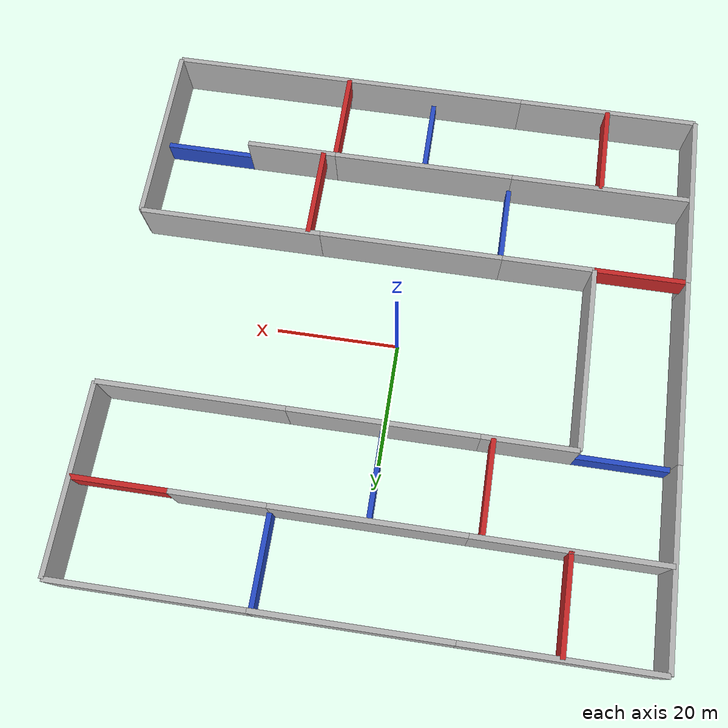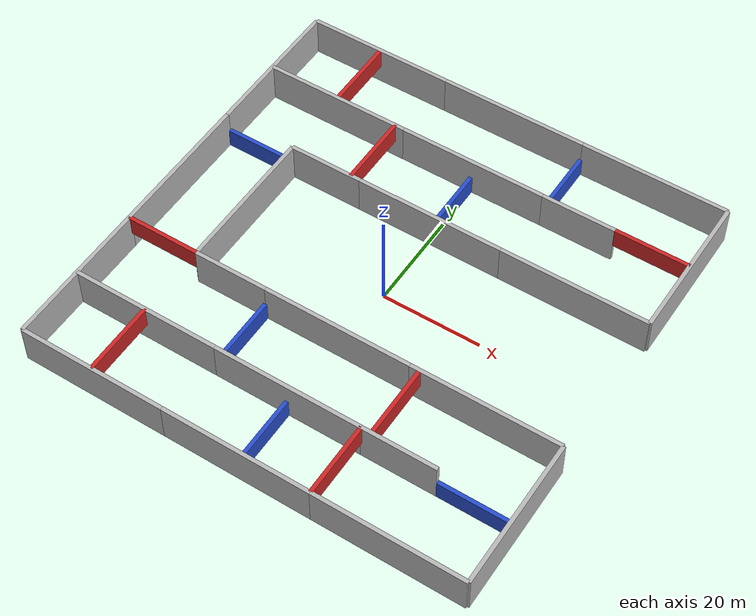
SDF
<?xml version="1.0" ?>
<sdf version="1.5">
  <world name="default">
    <scene>
      <sky>
        <clouds>
          <speed>7</speed>
        </clouds>
      </sky>
    </scene>

    <physics name='default_physics' default='0' type='ode'>
      <gravity>0 0 -9.8066</gravity>
      <ode>
        <solver>
          <type>quick</type>
          <iters>25</iters>
          <sor>1.3</sor>
          <use_dynamic_moi_rescaling>0</use_dynamic_moi_rescaling>
        </solver>
        <constraints>
          <cfm>0</cfm>
          <erp>0.2</erp>
          <contact_max_correcting_vel>100</contact_max_correcting_vel>
          <contact_surface_layer>0.001</contact_surface_layer>
        </constraints>
      </ode>
      <max_step_size>0.004</max_step_size>
      <real_time_factor>1</real_time_factor>
      <real_time_update_rate>250</real_time_update_rate>
      <magnetic_field>6.0e-6 2.3e-5 -4.2e-5</magnetic_field>
    </physics>

    <!-- A global light source -->
    <include>
      <uri>model://sun</uri>
    </include>
    <!-- A ground plane -->

    <include>
      <static>true</static>
      <pose>-0 0 0 0 0 0</pose>
      <uri>model://easy_maze_3d</uri>
    </include>

    <plugin name='gazebo_octomap' filename='libBuildOctomapPlugin.so'/>

  </world>
</sdf>

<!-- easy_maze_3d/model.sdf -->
<sdf version="1.5">
  <model name="easy_maze_3d">

    <include>
      <name>w1</name>
      <pose>-30 -45 0 0 0 0</pose>
      <uri>model://maze_wall</uri>
    </include>
    <include>
      <name>w2</name>
      <pose>0 -45 0 0 0 0</pose>
      <uri>model://maze_wall</uri>
    </include>
    <include>
      <name>w3</name>
      <pose>30 -45 0 0 0 0</pose>
      <uri>model://maze_wall</uri>
    </include>
    <include>
      <name>w4</name>
      <pose>-30 -30 0 0 0 0</pose>
      <uri>model://maze_wall</uri>
    </include>
    <include>
      <name>w5</name>
      <pose>0 -30 0 0 0 0</pose>
      <uri>model://maze_wall</uri>
    </include>
    <include>
      <name>w6</name>
      <pose>22.5 -30 0 0 0 0</pose>
      <uri>model://maze_wall_short</uri>
    </include>
    <include>
      <name>w7</name>
      <pose>45 -30 0 0 0 1.5708</pose>
      <uri>model://maze_wall</uri>
    </include>
    <include>
      <name>w8</name>
      <pose>30 -15 0 0 0 0</pose>
      <uri>model://maze_wall</uri>
    </include>
    <include>
      <name>w9</name>
      <pose>0 -15 0 0 0 0</pose>
      <uri>model://maze_wall</uri>
    </include>
    <include>
      <name>w10</name>
      <pose>-22.5 -15 0 0 0 0</pose>
      <uri>model://maze_wall_short</uri>
    </include>

    <include>
      <name>w11</name>
      <pose>-45 -30 0 0 0 1.5708</pose>
      <uri>model://maze_wall</uri>
    </include>
    <include>
      <name>w12</name>
      <pose>-45 0 0 0 0 1.5708</pose>
      <uri>model://maze_wall</uri>
    </include>
    <include>
      <name>w13</name>
      <pose>-45 30 0 0 0 1.5708</pose>
      <uri>model://maze_wall</uri>
    </include>
    <include>
      <name>w14</name>
      <pose>-30 0 0 0 0 1.5708</pose>
      <uri>model://maze_wall</uri>
    </include>
    <include>
      <name>w15</name>
      <pose>30 15 0 0 0 0</pose>
      <uri>model://maze_wall</uri>
    </include>
    <include>
      <name>w16</name>
      <pose>0 15 0 0 0 0</pose>
      <uri>model://maze_wall</uri>
    </include>
    <include>
      <name>w17</name>
      <pose>-22.5 15 0 0 0 0</pose>
      <uri>model://maze_wall_short</uri>
    </include>
    <include>
      <name>w18</name>
      <pose>-30 30 0 0 0 0</pose>
      <uri>model://maze_wall</uri>
    </include>
    <include>
      <name>w19</name>
      <pose>0 30 0 0 0 0</pose>
      <uri>model://maze_wall</uri>
    </include>
    <include>
      <name>w20</name>
      <pose>22.5 30 0 0 0 0</pose>
      <uri>model://maze_wall_short</uri>
    </include>
    <include>
      <name>w21</name>
      <pose>-30 45 0 0 0 0</pose>
      <uri>model://maze_wall</uri>
    </include>
    <include>
      <name>w22</name>
      <pose>0 45 0 0 0 0</pose>
      <uri>model://maze_wall</uri>
    </include>
    <include>
      <name>w23</name>
      <pose>30 45 0 0 0 0</pose>
      <uri>model://maze_wall</uri>
    </include>
    <include>
      <name>w24</name>
      <pose>45 30 0 0 0 1.5708</pose>
      <uri>model://maze_wall</uri>
    </include>

    <include>
      <name>w101</name>
      <pose>0 -37.5 0 0 0 1.5708</pose>
      <uri>model://maze_wall_low</uri>
    </include>
    <include>
      <name>w102</name>
      <pose>-15 -22.5 0 0 0 1.5708</pose>
      <uri>model://maze_wall_low</uri>
    </include>
    <include>
      <name>w103</name>
      <pose>0 22.5 0 0 0 1.5708</pose>
      <uri>model://maze_wall_low</uri>
    </include>
    <include>
      <name>w104</name>
      <pose>15 37.5 0 0 0 1.5708</pose>
      <uri>model://maze_wall_low</uri>
    </include>
    <include>
      <name>w105</name>
      <pose>37.5 -30 0 0 0 0</pose>
      <uri>model://maze_wall_low</uri>
    </include>
    <include>
      <name>w106</name>
      <pose>-37.5 15 0 0 0 0</pose>
      <uri>model://maze_wall_low</uri>
    </include>

    <include>
      <name>w201</name>
      <pose>-30 -37.5 0 0 0 1.5708</pose>
      <uri>model://maze_wall_high</uri>
    </include>
    <include>
      <name>w202</name>
      <pose>15 -37.5 0 0 0 1.5708</pose>
      <uri>model://maze_wall_high</uri>
    </include>
    <include>
      <name>w203</name>
      <pose>17 -22.5 0 0 0 1.5708</pose>
      <uri>model://maze_wall_high</uri>
    </include>
    <include>
      <name>w204</name>
      <pose>-17 22.5 0 0 0 1.5708</pose>
      <uri>model://maze_wall_high</uri>
    </include>
    <include>
      <name>w205</name>
      <pose>-30 37.5 0 0 0 1.5708</pose>
      <uri>model://maze_wall_high</uri>
    </include>
    <include>
      <name>w206</name>
      <pose>37.5 30 0 0 0 0</pose>
      <uri>model://maze_wall_high</uri>
    </include>
    <include>
      <name>w207</name>
      <pose>-37.5 -15 0 0 0 0</pose>
      <uri>model://maze_wall_high</uri>
    </include>

  </model>
</sdf>

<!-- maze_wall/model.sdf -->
<sdf version="1.5">
  <model name="maze_wall">
    <static>true</static>
    <link name="link">
      <pose>0 0 4 0 0 0</pose>
      <collision name="collision_m">
        <geometry>
          <box>
            <size>30 0.8 8</size>
          </box>
        </geometry>
      </collision>
      <visual name="visual_m">
        <geometry>
          <box>
            <size>30 0.8 8</size>
          </box>
        </geometry>
        <material>
          <script>
            <uri>model://maze_wall/materials/scripts</uri>
            <uri>model://maze_wall/materials/textures</uri>
            <name>vrc/maze_wall</name>
          </script>
        </material>
      </visual>
    </link>
  </model>
</sdf>

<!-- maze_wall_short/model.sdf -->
<sdf version="1.5">
  <model name="maze_wall_short">
    <static>true</static>
    <link name="link">
      <pose>0 0 4 0 0 0</pose>
      <collision name="collision_s">
        <geometry>
          <box>
            <size>15 0.8 8</size>
          </box>
        </geometry>
      </collision>
      <visual name="visual_s">
        <geometry>
          <box>
            <size>15 0.8 8</size>
          </box>
        </geometry>
        <material>
          <script>
            <uri>model://maze_wall_short/materials/scripts</uri>
            <uri>model://maze_wall_short/materials/textures</uri>
            <name>vrc/maze_wall_short</name>
          </script>
        </material>
      </visual>
    </link>
  </model>
</sdf>

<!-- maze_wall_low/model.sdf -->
<sdf version="1.5">
  <model name="maze_wall_low">
    <static>true</static>
    <link name="lowlink">
      <pose>0 0 2 0 0 0</pose>
      <collision name="collision_l">
        <geometry>
          <box>
            <size>15 0.8 4</size>
          </box>
        </geometry>
      </collision>
      <visual name="visual_l">
        <geometry>
          <box>
            <size>15 0.8 4</size>
          </box>
        </geometry>
        <material>
          <script>
            <name>Gazebo/Blue</name>
            <uri>file://media/materials/scripts/gazebo.material</uri>
          </script>
        </material>
      </visual>
    </link>
  </model>
</sdf>

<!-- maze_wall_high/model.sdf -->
<sdf version="1.5">
  <model name="maze_wall_high">
    <static>true</static>
    <link name="highlink">
      <pose>0 0 6 0 0 0</pose>
      <collision name="collision_h">
        <geometry>
          <box>
            <size>15 0.8 4</size>
          </box>
        </geometry>
      </collision>
      <visual name="visual_v">
        <geometry>
          <box>
            <size>15 0.8 4</size>
          </box>
        </geometry>
        <material>
          <script>
            <name>Gazebo/Red</name>
            <uri>file://media/materials/scripts/gazebo.material</uri>
          </script>
        </material>
      </visual>
    </link>
  </model>
</sdf>
